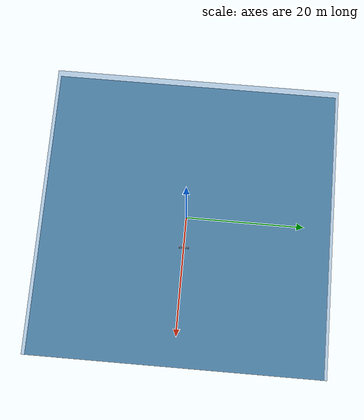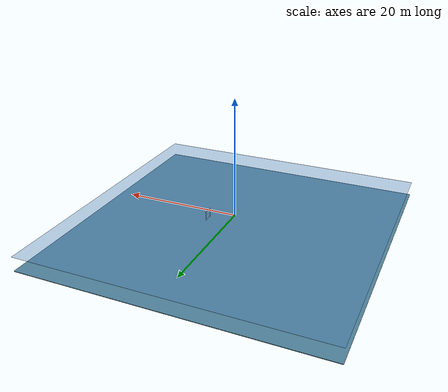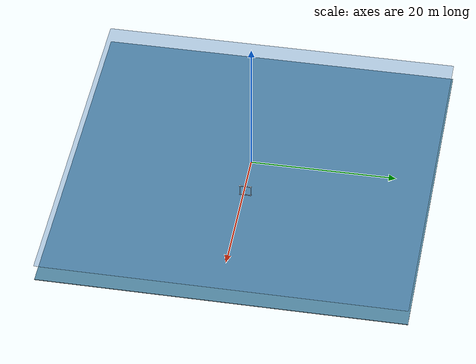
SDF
<?xml version="1.0" ?>
<sdf version="1.6">
  <world name="white_gate_autonomous">

    <!-- Enhanced underwater scene for better visibility -->
    <scene>
      <ambient>0.3 0.4 0.5</ambient>
      <background>0.1 0.3 0.5</background>
      <shadows>true</shadows>
    </scene>

    <!-- Physics -->
    <physics name="default" type="ode">
      <max_step_size>0.001</max_step_size>
      <real_time_factor>1.0</real_time_factor>
      <real_time_update_rate>1000</real_time_update_rate>
      <gravity>0 0 -9.81</gravity>
    </physics>

    <!-- Essential plugins -->
    <plugin name='ignition::gazebo::systems::Physics' filename='ignition-gazebo-physics-system'/>
    <plugin name='ignition::gazebo::systems::UserCommands' filename='ignition-gazebo-user-commands-system'/>
    <plugin name='ignition::gazebo::systems::SceneBroadcaster' filename='ignition-gazebo-scene-broadcaster-system'/>
    <plugin filename="ignition-gazebo-sensors-system" name="ignition::gazebo::systems::Sensors">
      <render_engine>ogre2</render_engine>
    </plugin>
    <plugin filename="ignition-gazebo-contact-system" name="ignition::gazebo::systems::Contact"/>
    <plugin filename="ignition-gazebo-buoyancy-system" name="ignition::gazebo::systems::Buoyancy">
      <uniform_fluid_density>1000</uniform_fluid_density>
    </plugin>

    <!-- Strong directional light -->
    <light type="directional" name="sun">
      <cast_shadows>true</cast_shadows>
      <pose>0 0 10 0 0 0</pose>
      <diffuse>0.9 0.9 0.9 1</diffuse>
      <specular>0.5 0.5 0.5 1</specular>
      <direction>-0.5 0.1 -0.9</direction>
    </light>

    <!-- Spotlight on gate for maximum visibility -->
    <light type="spot" name="gate_spotlight">
      <pose>3 0 2 0 0.5 3.14159</pose>
      <diffuse>1.0 1.0 1.0 1</diffuse>
      <specular>0.8 0.8 0.8 1</specular>
      <attenuation>
        <range>15</range>
        <constant>0.3</constant>
        <linear>0.01</linear>
        <quadratic>0.001</quadratic>
      </attenuation>
      <spot>
        <inner_angle>0.6</inner_angle>
        <outer_angle>1.0</outer_angle>
        <falloff>1.0</falloff>
      </spot>
      <cast_shadows>false</cast_shadows>
    </light>

    <!-- Additional underwater ambient light -->
    <light type="point" name="ambient_light">
      <pose>0 0 0 0 0 0</pose>
      <diffuse>0.6 0.7 0.8 1</diffuse>
      <specular>0.3 0.3 0.3 1</specular>
      <attenuation>
        <range>30</range>
        <constant>0.5</constant>
        <linear>0.01</linear>
        <quadratic>0.001</quadratic>
      </attenuation>
    </light>

    <!-- Pool floor - Large and visible -->
    <model name="pool_floor">
      <static>true</static>
      <link name="floor_link">
        <collision name="floor_collision">
          <pose>0 0 -2.5 0 0 0</pose>
          <geometry>
            <box>
              <size>50 50 0.1</size>
            </box>
          </geometry>
        </collision>
        <visual name="floor_visual">
          <pose>0 0 -2.5 0 0 0</pose>
          <geometry>
            <box>
              <size>50 50 0.1</size>
            </box>
          </geometry>
          <material>
            <ambient>0.3 0.5 0.6 1</ambient>
            <diffuse>0.3 0.5 0.6 1</diffuse>
            <specular>0.2 0.2 0.2 1</specular>
          </material>
        </visual>
      </link>
    </model>

    <!-- Water surface -->
    <model name="water_surface">
      <static>true</static>
      <link name="surface_link">
        <visual name="surface_visual">
          <pose>0 0 0 0 0 0</pose>
          <geometry>
            <box>
              <size>50 50 0.01</size>
            </box>
          </geometry>
          <material>
            <ambient>0.3 0.5 0.7 0.4</ambient>
            <diffuse>0.3 0.5 0.7 0.4</diffuse>
            <specular>0.5 0.5 0.5 0.4</specular>
          </material>
        </visual>
      </link>
    </model>

    <!-- PROPER 1.5m x 1.5m WHITE GATE - Maximum Visibility                 -->
    <!-- Frame structure with thick, bright white posts                      -->
    <model name="white_gate">
      <static>true</static>
      <pose>5.0 0 -0.75 0 0 0</pose>
      <link name="gate_link">

        <!-- LEFT POST - 1.5m tall, thick and bright -->
        <collision name="left_post_collision">
          <pose>0 -0.75 0 0 0 0</pose>
          <geometry>
            <box>
              <size>0.08 0.08 1.5</size>
            </box>
          </geometry>
        </collision>
        <visual name="left_post_visual">
          <pose>0 -0.75 0 0 0 0</pose>
          <geometry>
            <box>
              <size>0.08 0.08 1.5</size>
            </box>
          </geometry>
          <material>
            <ambient>1.0 1.0 1.0 1</ambient>
            <diffuse>1.0 1.0 1.0 1</diffuse>
            <specular>1.0 1.0 1.0 1</specular>
            <emissive>0.9 0.9 0.9 1</emissive>
          </material>
        </visual>

        <!-- RIGHT POST - 1.5m tall -->
        <collision name="right_post_collision">
          <pose>0 0.75 0 0 0 0</pose>
          <geometry>
            <box>
              <size>0.08 0.08 1.5</size>
            </box>
          </geometry>
        </collision>
        <visual name="right_post_visual">
          <pose>0 0.75 0 0 0 0</pose>
          <geometry>
            <box>
              <size>0.08 0.08 1.5</size>
            </box>
          </geometry>
          <material>
            <ambient>1.0 1.0 1.0 1</ambient>
            <diffuse>1.0 1.0 1.0 1</diffuse>
            <specular>1.0 1.0 1.0 1</specular>
            <emissive>0.9 0.9 0.9 1</emissive>
          </material>
        </visual>

        <!-- TOP BAR - 1.5m wide -->
        <collision name="top_bar_collision">
          <pose>0 0 0.75 0 0 0</pose>
          <geometry>
            <box>
              <size>0.08 1.5 0.08</size>
            </box>
          </geometry>
        </collision>
        <visual name="top_bar_visual">
          <pose>0 0 0.75 0 0 0</pose>
          <geometry>
            <box>
              <size>0.08 1.5 0.08</size>
            </box>
          </geometry>
          <material>
            <ambient>1.0 1.0 1.0 1</ambient>
            <diffuse>1.0 1.0 1.0 1</diffuse>
            <specular>1.0 1.0 1.0 1</specular>
            <emissive>0.9 0.9 0.9 1</emissive>
          </material>
        </visual>

        <!-- BOTTOM BAR - 1.5m wide (completes the frame) -->
        <collision name="bottom_bar_collision">
          <pose>0 0 -0.75 0 0 0</pose>
          <geometry>
            <box>
              <size>0.08 1.5 0.08</size>
            </box>
          </geometry>
        </collision>
        <visual name="bottom_bar_visual">
          <pose>0 0 -0.75 0 0 0</pose>
          <geometry>
            <box>
              <size>0.08 1.5 0.08</size>
            </box>
          </geometry>
          <material>
            <ambient>1.0 1.0 1.0 1</ambient>
            <diffuse>1.0 1.0 1.0 1</diffuse>
            <specular>1.0 1.0 1.0 1</specular>
            <emissive>0.9 0.9 0.9 1</emissive>
          </material>
        </visual>

        <!-- Corner markers for enhanced visibility -->
        <visual name="corner_tl">
          <pose>0 -0.75 0.75 0 0 0</pose>
          <geometry>
            <sphere>
              <radius>0.10</radius>
            </sphere>
          </geometry>
          <material>
            <ambient>1.0 1.0 1.0 1</ambient>
            <diffuse>1.0 1.0 1.0 1</diffuse>
            <specular>1.0 1.0 1.0 1</specular>
            <emissive>1.0 1.0 1.0 1</emissive>
          </material>
        </visual>

        <visual name="corner_tr">
          <pose>0 0.75 0.75 0 0 0</pose>
          <geometry>
            <sphere>
              <radius>0.10</radius>
            </sphere>
          </geometry>
          <material>
            <ambient>1.0 1.0 1.0 1</ambient>
            <diffuse>1.0 1.0 1.0 1</diffuse>
            <specular>1.0 1.0 1.0 1</specular>
            <emissive>1.0 1.0 1.0 1</emissive>
          </material>
        </visual>

        <visual name="corner_bl">
          <pose>0 -0.75 -0.75 0 0 0</pose>
          <geometry>
            <sphere>
              <radius>0.10</radius>
            </sphere>
          </geometry>
          <material>
            <ambient>1.0 1.0 1.0 1</ambient>
            <diffuse>1.0 1.0 1.0 1</diffuse>
            <specular>1.0 1.0 1.0 1</specular>
            <emissive>1.0 1.0 1.0 1</emissive>
          </material>
        </visual>

        <visual name="corner_br">
          <pose>0 0.75 -0.75 0 0 0</pose>
          <geometry>
            <sphere>
              <radius>0.10</radius>
            </sphere>
          </geometry>
          <material>
            <ambient>1.0 1.0 1.0 1</ambient>
            <diffuse>1.0 1.0 1.0 1</diffuse>
            <specular>1.0 1.0 1.0 1</specular>
            <emissive>1.0 1.0 1.0 1</emissive>
          </material>
        </visual>

        <!-- Center marker for easy alignment visualization -->
        <visual name="center_marker">
          <pose>0 0 0 0 0 0</pose>
          <geometry>
            <sphere>
              <radius>0.06</radius>
            </sphere>
          </geometry>
          <material>
            <ambient>1.0 1.0 0.0 1</ambient>
            <diffuse>1.0 1.0 0.0 1</diffuse>
            <specular>1.0 1.0 0.0 1</specular>
            <emissive>1.0 1.0 0.0 1</emissive>
          </material>
        </visual>

      </link>
    </model>

    <!-- Starting zone marker -->
    <model name="start_marker">
      <static>true</static>
      <pose>0 0 -0.3 0 0 0</pose>
      <link name="marker_link">
        <visual name="marker_visual">
          <geometry>
            <box>
              <size>0.8 0.8 0.1</size>
            </box>
          </geometry>
          <material>
            <ambient>0 1 0 0.8</ambient>
            <diffuse>0 1 0 0.8</diffuse>
            <specular>0.5 1 0.5 1</specular>
            <emissive>0 0.8 0 1</emissive>
          </material>
        </visual>
      </link>
    </model>

    <!-- Success zone marker (beyond gate) -->
    <model name="success_marker">
      <static>true</static>
      <pose>8.0 0 -0.75 0 0 0</pose>
      <link name="marker_link">
        <visual name="marker_visual">
          <geometry>
            <cylinder>
              <radius>0.5</radius>
              <length>0.1</length>
            </cylinder>
          </geometry>
          <material>
            <ambient>0 1 0 0.6</ambient>
            <diffuse>0 1 0 0.6</diffuse>
            <specular>0.5 1 0.5 1</specular>
            <emissive>0 0.9 0 1</emissive>
          </material>
        </visual>
      </link>
    </model>

    <!-- Grid markers for distance reference -->
    <model name="distance_markers">
      <static>true</static>
      <link name="markers_link">
        <!-- 1m marker -->
        <visual name="marker_1m">
          <pose>1 0 -0.3 0 0 0</pose>
          <geometry>
            <cylinder>
              <radius>0.1</radius>
              <length>0.05</length>
            </cylinder>
          </geometry>
          <material>
            <ambient>1 1 0 0.5</ambient>
            <diffuse>1 1 0 0.5</diffuse>
          </material>
        </visual>

        <!-- 2m marker -->
        <visual name="marker_2m">
          <pose>2 0 -0.3 0 0 0</pose>
          <geometry>
            <cylinder>
              <radius>0.1</radius>
              <length>0.05</length>
            </cylinder>
          </geometry>
          <material>
            <ambient>1 1 0 0.5</ambient>
            <diffuse>1 1 0 0.5</diffuse>
          </material>
        </visual>

        <!-- 3m marker -->
        <visual name="marker_3m">
          <pose>3 0 -0.3 0 0 0</pose>
          <geometry>
            <cylinder>
              <radius>0.1</radius>
              <length>0.05</length>
            </cylinder>
          </geometry>
          <material>
            <ambient>1 0.5 0 0.5</ambient>
            <diffuse>1 0.5 0 0.5</diffuse>
          </material>
        </visual>

        <!-- 4m marker -->
        <visual name="marker_4m">
          <pose>4 0 -0.3 0 0 0</pose>
          <geometry>
            <cylinder>
              <radius>0.1</radius>
              <length>0.05</length>
            </cylinder>
          </geometry>
          <material>
            <ambient>1 0 0 0.5</ambient>
            <diffuse>1 0 0 0.5</diffuse>
          </material>
        </visual>
      </link>
    </model>

  </world>
</sdf>
